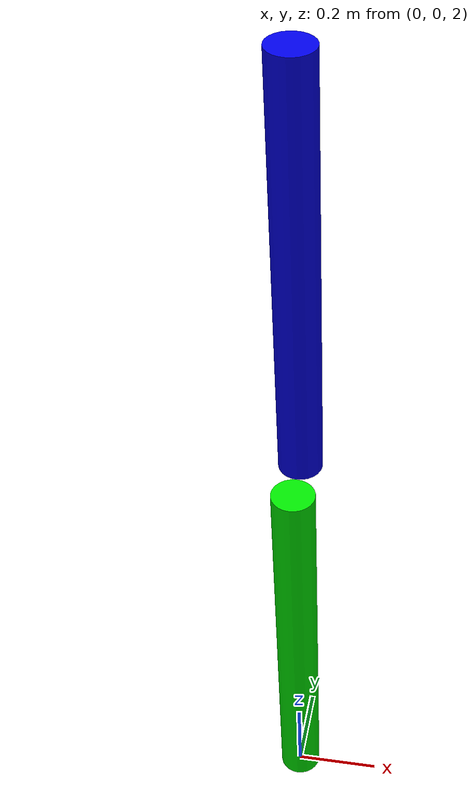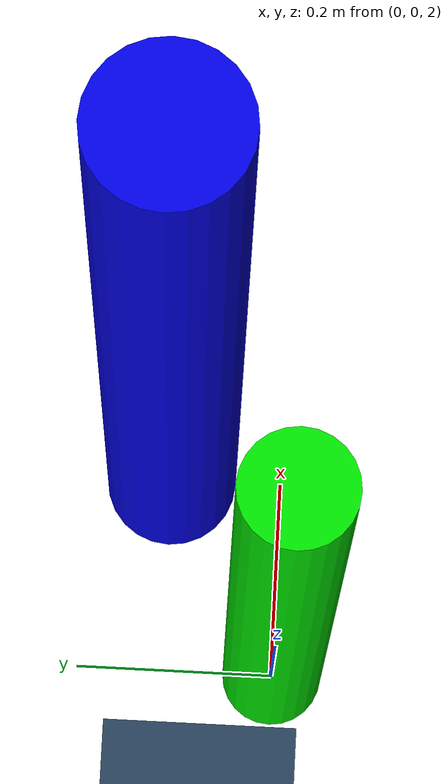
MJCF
<mujoco>
	<option timestep="0.001"  integrator="RK4">
		<flag sensornoise="enable" energy="enable" contact="enable" />
	</option>
	<asset>
		<texture type="skybox" builtin="gradient" rgb1="0.3 0.5 0.7" rgb2="0 0 0" width="512" height="3072"/>
		<texture type="2d" name="groundplane" builtin="checker" mark="edge" rgb1="0.2 0.3 0.4"
				 rgb2="0.1 0.2 0.3" markrgb="0.8 0.8 0.8" width="300" height="300"/>
		<material name="groundplane" texture="groundplane" texuniform="true" texrepeat="5 5" reflectance="0.2"/>
	</asset>

	<worldbody>
		<light pos="0 0 1"/>
		<light pos="0 -0.2 1" dir="0 0.2 -0.8" directional="true"/>
		<geom name="floor" size="0 0 0.05" type="plane" material="groundplane"/>
		<body pos="0 0 2.5" euler="0 0 0">
			<joint name="pin1" type="hinge" axis="0 -1 0" pos="0 0 -0.5"/>
			<geom type="cylinder" size="0.05 0.5" rgba="0 .9 0 1" mass="1"/>
			<body pos="0 0.1 1" euler="0 0 0">
				<joint name="pin2" type="hinge" axis="0 -1 0" pos="0 0.05 -0.5"/>
				<geom type="cylinder" size="0.05 0.5" rgba="0 0 0.9 1" mass="1"/>
			</body>
		</body>
	</worldbody>
</mujoco>
